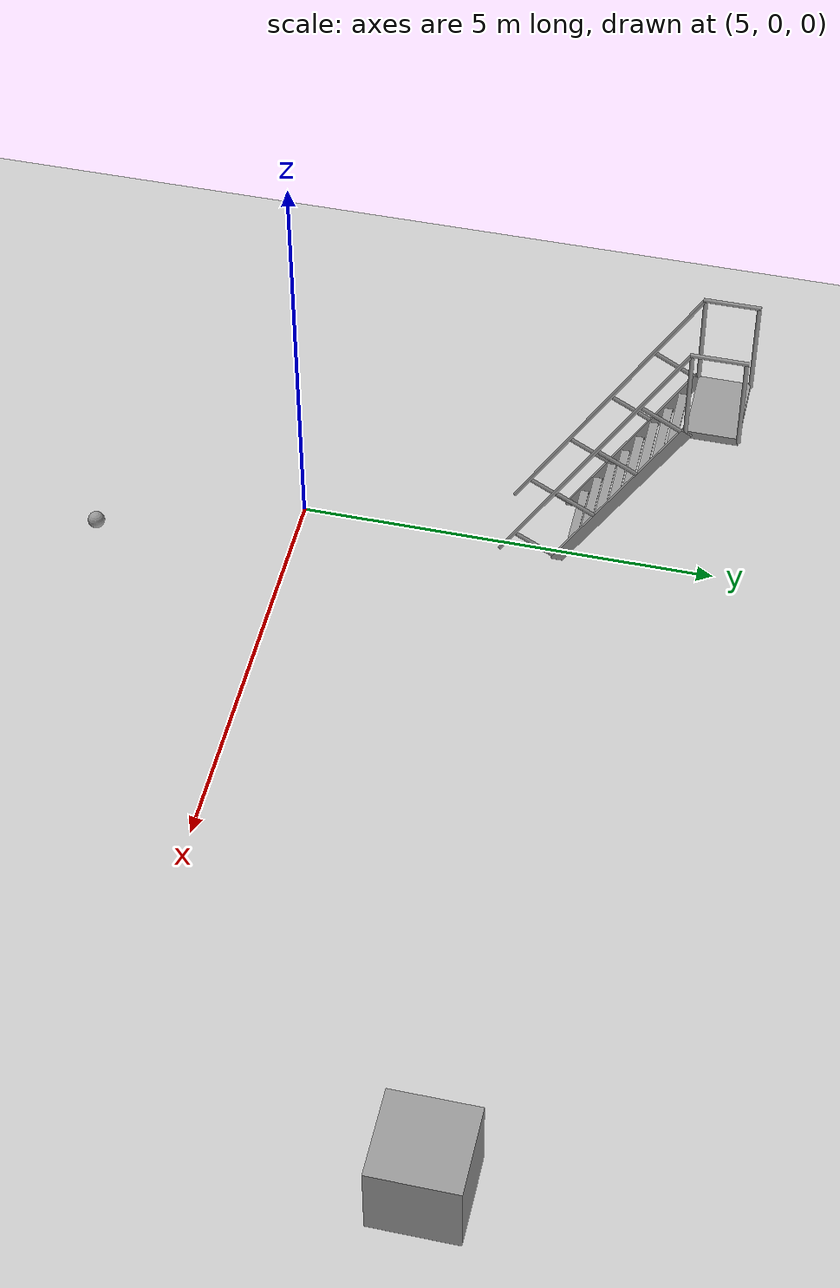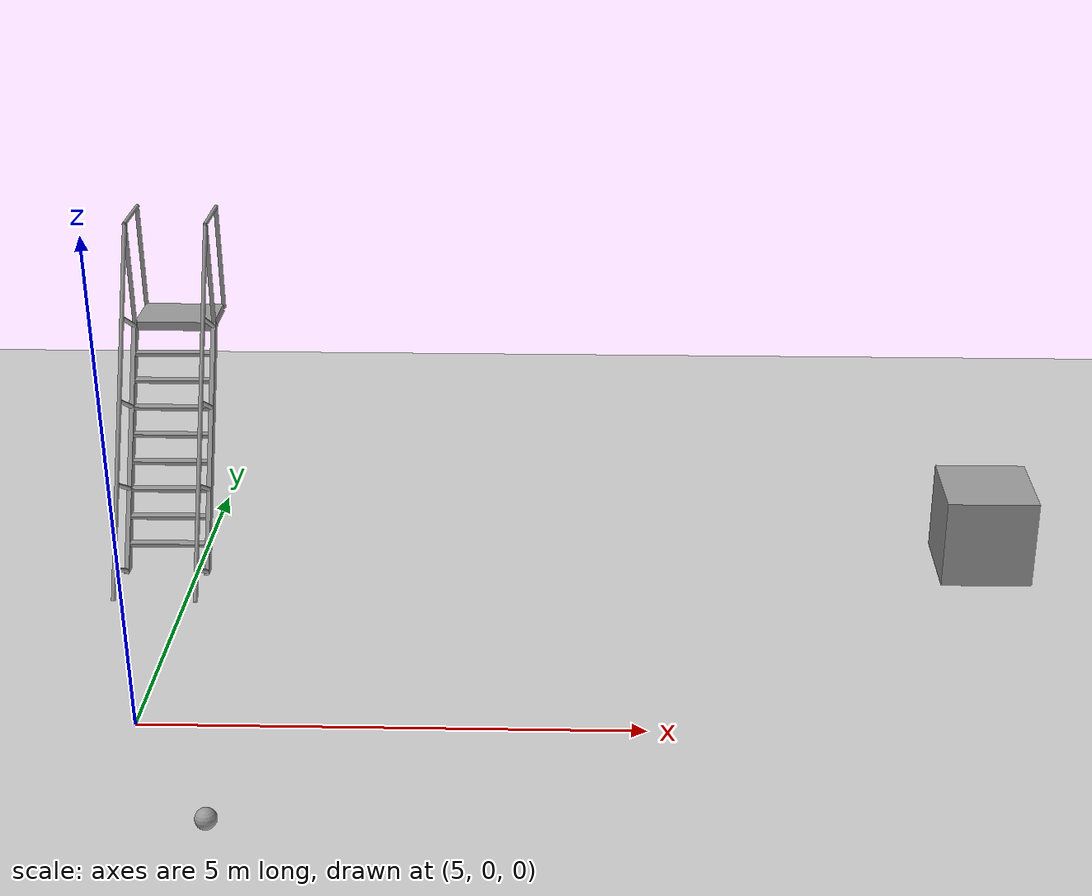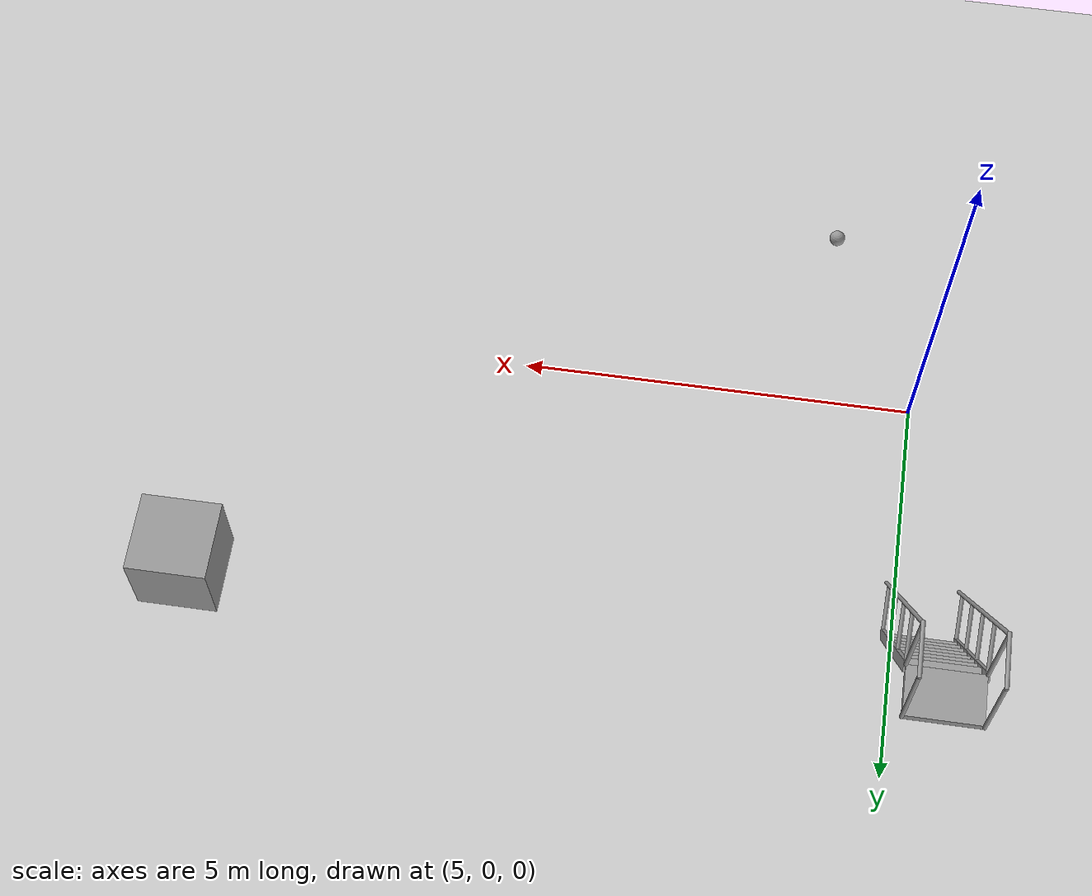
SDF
<sdf version="1.6">
 <world name="default">
  <model name="ground_plane">
   <static>1</static>
   <link name="link">
    <collision name="collision">
     <geometry><plane><normal>0 0 1</normal><size>100 100</size></plane></geometry>
     <surface>
      <contact><collide_bitmask>65535</collide_bitmask></contact>
      <friction><ode><mu>100</mu><mu2>50</mu2></ode></friction>
     </surface>
    </collision>
    <visual name="visual">
     <cast_shadows>0</cast_shadows>
     <geometry><plane><normal>0 0 1</normal><size>100 100</size></plane></geometry>
     <material>
      <script><uri>file://media/materials/scripts/gazebo.material</uri><name>Gazebo/Grey</name></script>
     </material>
    </visual>
   </link>
  </model>
  <model name="ladder_60deg_2rails">
   <static>1</static>
   <link name="step0">
    <pose>0 0.15396 0.266667 0 -0 0</pose>
    <inertial>
     <mass>9.75482</mass>
     <inertia>
      <ixx>0.00957124</ixx>
      <iyy>0.65963</iyy>
      <izz>0.666842</izz>
      <ixy>0</ixy>
      <ixz>0</ixz>
      <iyz>0</iyz>
     </inertia>
    </inertial>
    <collision name="collision"><geometry><box><size>0.9 0.1016 0.0381</size></box></geometry></collision>
    <visual name="visual">
     <geometry><box><size>0.9 0.1016 0.0381</size></box></geometry>
     <material>
      <script><uri>file://media/materials/scripts/gazebo.material</uri><name>Gazebo/Grey</name></script>
     </material>
    </visual>
   </link>
   <link name="step1">
    <pose>0 0.30792 0.533333 0 -0 0</pose>
    <inertial>
     <mass>9.75482</mass>
     <inertia>
      <ixx>0.00957124</ixx>
      <iyy>0.65963</iyy>
      <izz>0.666842</izz>
      <ixy>0</ixy>
      <ixz>0</ixz>
      <iyz>0</iyz>
     </inertia>
    </inertial>
    <collision name="collision"><geometry><box><size>0.9 0.1016 0.0381</size></box></geometry></collision>
    <visual name="visual">
     <geometry><box><size>0.9 0.1016 0.0381</size></box></geometry>
     <material>
      <script><uri>file://media/materials/scripts/gazebo.material</uri><name>Gazebo/Grey</name></script>
     </material>
    </visual>
   </link>
   <link name="step2">
    <pose>0 0.46188 0.8 0 -0 0</pose>
    <inertial>
     <mass>9.75482</mass>
     <inertia>
      <ixx>0.00957124</ixx>
      <iyy>0.65963</iyy>
      <izz>0.666842</izz>
      <ixy>0</ixy>
      <ixz>0</ixz>
      <iyz>0</iyz>
     </inertia>
    </inertial>
    <collision name="collision"><geometry><box><size>0.9 0.1016 0.0381</size></box></geometry></collision>
    <visual name="visual">
     <geometry><box><size>0.9 0.1016 0.0381</size></box></geometry>
     <material>
      <script><uri>file://media/materials/scripts/gazebo.material</uri><name>Gazebo/Grey</name></script>
     </material>
    </visual>
   </link>
   <link name="step3">
    <pose>0 0.61584 1.06667 0 -0 0</pose>
    <inertial>
     <mass>9.75482</mass>
     <inertia>
      <ixx>0.00957124</ixx>
      <iyy>0.65963</iyy>
      <izz>0.666842</izz>
      <ixy>0</ixy>
      <ixz>0</ixz>
      <iyz>0</iyz>
     </inertia>
    </inertial>
    <collision name="collision"><geometry><box><size>0.9 0.1016 0.0381</size></box></geometry></collision>
    <visual name="visual">
     <geometry><box><size>0.9 0.1016 0.0381</size></box></geometry>
     <material>
      <script><uri>file://media/materials/scripts/gazebo.material</uri><name>Gazebo/Grey</name></script>
     </material>
    </visual>
   </link>
   <link name="step4">
    <pose>0 0.7698 1.33333 0 -0 0</pose>
    <inertial>
     <mass>9.75482</mass>
     <inertia>
      <ixx>0.00957124</ixx>
      <iyy>0.65963</iyy>
      <izz>0.666842</izz>
      <ixy>0</ixy>
      <ixz>0</ixz>
      <iyz>0</iyz>
     </inertia>
    </inertial>
    <collision name="collision"><geometry><box><size>0.9 0.1016 0.0381</size></box></geometry></collision>
    <visual name="visual">
     <geometry><box><size>0.9 0.1016 0.0381</size></box></geometry>
     <material>
      <script><uri>file://media/materials/scripts/gazebo.material</uri><name>Gazebo/Grey</name></script>
     </material>
    </visual>
   </link>
   <link name="step5">
    <pose>0 0.92376 1.6 0 -0 0</pose>
    <inertial>
     <mass>9.75482</mass>
     <inertia>
      <ixx>0.00957124</ixx>
      <iyy>0.65963</iyy>
      <izz>0.666842</izz>
      <ixy>0</ixy>
      <ixz>0</ixz>
      <iyz>0</iyz>
     </inertia>
    </inertial>
    <collision name="collision"><geometry><box><size>0.9 0.1016 0.0381</size></box></geometry></collision>
    <visual name="visual">
     <geometry><box><size>0.9 0.1016 0.0381</size></box></geometry>
     <material>
      <script><uri>file://media/materials/scripts/gazebo.material</uri><name>Gazebo/Grey</name></script>
     </material>
    </visual>
   </link>
   <link name="step6">
    <pose>0 1.07772 1.86667 0 -0 0</pose>
    <inertial>
     <mass>9.75482</mass>
     <inertia>
      <ixx>0.00957124</ixx>
      <iyy>0.65963</iyy>
      <izz>0.666842</izz>
      <ixy>0</ixy>
      <ixz>0</ixz>
      <iyz>0</iyz>
     </inertia>
    </inertial>
    <collision name="collision"><geometry><box><size>0.9 0.1016 0.0381</size></box></geometry></collision>
    <visual name="visual">
     <geometry><box><size>0.9 0.1016 0.0381</size></box></geometry>
     <material>
      <script><uri>file://media/materials/scripts/gazebo.material</uri><name>Gazebo/Grey</name></script>
     </material>
    </visual>
   </link>
   <link name="step7">
    <pose>0 1.23168 2.13333 0 -0 0</pose>
    <inertial>
     <mass>9.75482</mass>
     <inertia>
      <ixx>0.00957124</ixx>
      <iyy>0.65963</iyy>
      <izz>0.666842</izz>
      <ixy>0</ixy>
      <ixz>0</ixz>
      <iyz>0</iyz>
     </inertia>
    </inertial>
    <collision name="collision"><geometry><box><size>0.9 0.1016 0.0381</size></box></geometry></collision>
    <visual name="visual">
     <geometry><box><size>0.9 0.1016 0.0381</size></box></geometry>
     <material>
      <script><uri>file://media/materials/scripts/gazebo.material</uri><name>Gazebo/Grey</name></script>
     </material>
    </visual>
   </link>
   <link name="landing">
    <pose>0 1.68564 2.4 0 -0 0</pose>
    <inertial>
     <mass>57.6072</mass>
     <inertia><ixx>1.73518</ixx><iyy>3.89545</iyy><izz>5.6167</izz><ixy>0</ixy><ixz>0</ixz><iyz>0</iyz></inertia>
    </inertial>
    <collision name="collision"><geometry><box><size>0.9 0.6 0.1016</size></box></geometry></collision>
    <visual name="visual">
     <geometry><box><size>0.9 0.6 0.1016</size></box></geometry>
     <material>
      <script><uri>file://media/materials/scripts/gazebo.material</uri><name>Gazebo/Grey</name></script>
     </material>
    </visual>
   </link>
   <link name="left_side_wall">
    <pose>-0.45 0.69282 1.2 1.0472 -0 0</pose>
    <collision name="collision"><geometry><box><size>0.0508 2.85128 0.13</size></box></geometry></collision>
    <visual name="visual">
     <geometry><box><size>0.0508 2.85128 0.13</size></box></geometry>
     <material>
      <script><uri>file://media/materials/scripts/gazebo.material</uri><name>Gazebo/Grey</name></script>
     </material>
    </visual>
   </link>
   <link name="right_side_wall">
    <pose>0.45 0.69282 1.2 1.0472 -0 0</pose>
    <collision name="collision"><geometry><box><size>0.0508 2.85128 0.13</size></box></geometry></collision>
    <visual name="visual">
     <geometry><box><size>0.0508 2.85128 0.13</size></box></geometry>
     <material>
      <script><uri>file://media/materials/scripts/gazebo.material</uri><name>Gazebo/Grey</name></script>
     </material>
    </visual>
   </link>
   <link name="left_railing_long">
    <pose>-0.45 0.34282 1.80622 -0.523599 0 0</pose>
    <collision name="collision">
     <geometry><cylinder><radius>0.02413</radius><length>4.17128</length></cylinder></geometry>
    </collision>
    <visual name="visual">
     <geometry><cylinder><radius>0.02413</radius><length>4.17128</length></cylinder></geometry>
     <material>
      <script><uri>file://media/materials/scripts/gazebo.material</uri><name>Gazebo/Grey</name></script>
     </material>
    </visual>
   </link>
   <link name="left_railing_upright0">
    <pose>-0.45 -0.274963 0.15875 1.0472 -0 0</pose>
    <collision name="collision">
     <geometry><cylinder><radius>0.02413</radius><length>0.541218</length></cylinder></geometry>
    </collision>
    <visual name="visual">
     <geometry><cylinder><radius>0.02413</radius><length>0.541218</length></cylinder></geometry>
     <material>
      <script><uri>file://media/materials/scripts/gazebo.material</uri><name>Gazebo/Grey</name></script>
     </material>
    </visual>
   </link>
   <link name="left_railing_upright1">
    <pose>-0.45 0.186917 0.95875 1.0472 -0 0</pose>
    <collision name="collision">
     <geometry><cylinder><radius>0.02413</radius><length>0.541218</length></cylinder></geometry>
    </collision>
    <visual name="visual">
     <geometry><cylinder><radius>0.02413</radius><length>0.541218</length></cylinder></geometry>
     <material>
      <script><uri>file://media/materials/scripts/gazebo.material</uri><name>Gazebo/Grey</name></script>
     </material>
    </visual>
   </link>
   <link name="left_railing_upright2">
    <pose>-0.45 0.648797 1.75875 1.0472 -0 0</pose>
    <collision name="collision">
     <geometry><cylinder><radius>0.02413</radius><length>0.541218</length></cylinder></geometry>
    </collision>
    <visual name="visual">
     <geometry><cylinder><radius>0.02413</radius><length>0.541218</length></cylinder></geometry>
     <material>
      <script><uri>file://media/materials/scripts/gazebo.material</uri><name>Gazebo/Grey</name></script>
     </material>
    </visual>
   </link>
   <link name="left_railing_upright3">
    <pose>-0.45 1.11068 2.55875 1.0472 -0 0</pose>
    <collision name="collision">
     <geometry><cylinder><radius>0.02413</radius><length>0.541218</length></cylinder></geometry>
    </collision>
    <visual name="visual">
     <geometry><cylinder><radius>0.02413</radius><length>0.541218</length></cylinder></geometry>
     <material>
      <script><uri>file://media/materials/scripts/gazebo.material</uri><name>Gazebo/Grey</name></script>
     </material>
    </visual>
   </link>
   <link name="left_railing_landing_top">
    <pose>-0.45 1.68564 3.61244 1.5708 -0 0</pose>
    <collision name="collision">
     <geometry><cylinder><radius>0.02413</radius><length>0.64826</length></cylinder></geometry>
    </collision>
    <visual name="visual">
     <geometry><cylinder><radius>0.02413</radius><length>0.64826</length></cylinder></geometry>
     <material>
      <script><uri>file://media/materials/scripts/gazebo.material</uri><name>Gazebo/Grey</name></script>
     </material>
    </visual>
   </link>
   <link name="left_railing_landing_upright_0">
    <pose>-0.45 1.38564 3.00622 0 -0 0</pose>
    <collision name="collision">
     <geometry><cylinder><radius>0.02413</radius><length>1.21244</length></cylinder></geometry>
    </collision>
    <visual name="visual">
     <geometry><cylinder><radius>0.02413</radius><length>1.21244</length></cylinder></geometry>
     <material>
      <script><uri>file://media/materials/scripts/gazebo.material</uri><name>Gazebo/Grey</name></script>
     </material>
    </visual>
   </link>
   <link name="left_railing_landing_upright_1">
    <pose>-0.45 1.98564 3.00622 0 -0 0</pose>
    <collision name="collision">
     <geometry><cylinder><radius>0.02413</radius><length>1.21244</length></cylinder></geometry>
    </collision>
    <visual name="visual">
     <geometry><cylinder><radius>0.02413</radius><length>1.21244</length></cylinder></geometry>
     <material>
      <script><uri>file://media/materials/scripts/gazebo.material</uri><name>Gazebo/Grey</name></script>
     </material>
    </visual>
   </link>
   <link name="right_railing_long">
    <pose>0.45 0.34282 1.80622 -0.523599 0 0</pose>
    <collision name="collision">
     <geometry><cylinder><radius>0.02413</radius><length>4.17128</length></cylinder></geometry>
    </collision>
    <visual name="visual">
     <geometry><cylinder><radius>0.02413</radius><length>4.17128</length></cylinder></geometry>
     <material>
      <script><uri>file://media/materials/scripts/gazebo.material</uri><name>Gazebo/Grey</name></script>
     </material>
    </visual>
   </link>
   <link name="right_railing_upright0">
    <pose>0.45 -0.274963 0.15875 1.0472 -0 0</pose>
    <collision name="collision">
     <geometry><cylinder><radius>0.02413</radius><length>0.541218</length></cylinder></geometry>
    </collision>
    <visual name="visual">
     <geometry><cylinder><radius>0.02413</radius><length>0.541218</length></cylinder></geometry>
     <material>
      <script><uri>file://media/materials/scripts/gazebo.material</uri><name>Gazebo/Grey</name></script>
     </material>
    </visual>
   </link>
   <link name="right_railing_upright1">
    <pose>0.45 0.186917 0.95875 1.0472 -0 0</pose>
    <collision name="collision">
     <geometry><cylinder><radius>0.02413</radius><length>0.541218</length></cylinder></geometry>
    </collision>
    <visual name="visual">
     <geometry><cylinder><radius>0.02413</radius><length>0.541218</length></cylinder></geometry>
     <material>
      <script><uri>file://media/materials/scripts/gazebo.material</uri><name>Gazebo/Grey</name></script>
     </material>
    </visual>
   </link>
   <link name="right_railing_upright2">
    <pose>0.45 0.648797 1.75875 1.0472 -0 0</pose>
    <collision name="collision">
     <geometry><cylinder><radius>0.02413</radius><length>0.541218</length></cylinder></geometry>
    </collision>
    <visual name="visual">
     <geometry><cylinder><radius>0.02413</radius><length>0.541218</length></cylinder></geometry>
     <material>
      <script><uri>file://media/materials/scripts/gazebo.material</uri><name>Gazebo/Grey</name></script>
     </material>
    </visual>
   </link>
   <link name="right_railing_upright3">
    <pose>0.45 1.11068 2.55875 1.0472 -0 0</pose>
    <collision name="collision">
     <geometry><cylinder><radius>0.02413</radius><length>0.541218</length></cylinder></geometry>
    </collision>
    <visual name="visual">
     <geometry><cylinder><radius>0.02413</radius><length>0.541218</length></cylinder></geometry>
     <material>
      <script><uri>file://media/materials/scripts/gazebo.material</uri><name>Gazebo/Grey</name></script>
     </material>
    </visual>
   </link>
   <link name="right_railing_landing_top">
    <pose>0.45 1.68564 3.61244 1.5708 -0 0</pose>
    <collision name="collision">
     <geometry><cylinder><radius>0.02413</radius><length>0.64826</length></cylinder></geometry>
    </collision>
    <visual name="visual">
     <geometry><cylinder><radius>0.02413</radius><length>0.64826</length></cylinder></geometry>
     <material>
      <script><uri>file://media/materials/scripts/gazebo.material</uri><name>Gazebo/Grey</name></script>
     </material>
    </visual>
   </link>
   <link name="right_railing_landing_upright_0">
    <pose>0.45 1.38564 3.00622 0 -0 0</pose>
    <collision name="collision">
     <geometry><cylinder><radius>0.02413</radius><length>1.21244</length></cylinder></geometry>
    </collision>
    <visual name="visual">
     <geometry><cylinder><radius>0.02413</radius><length>1.21244</length></cylinder></geometry>
     <material>
      <script><uri>file://media/materials/scripts/gazebo.material</uri><name>Gazebo/Grey</name></script>
     </material>
    </visual>
   </link>
   <link name="right_railing_landing_upright_1">
    <pose>0.45 1.98564 3.00622 0 -0 0</pose>
    <collision name="collision">
     <geometry><cylinder><radius>0.02413</radius><length>1.21244</length></cylinder></geometry>
    </collision>
    <visual name="visual">
     <geometry><cylinder><radius>0.02413</radius><length>1.21244</length></cylinder></geometry>
     <material>
      <script><uri>file://media/materials/scripts/gazebo.material</uri><name>Gazebo/Grey</name></script>
     </material>
    </visual>
   </link>
   <pose>4.6499 3.13895 0 0 -0 0</pose>
  </model>
  <model name="unit_box">
   <pose>13.783 3.5118 0.499995 0 1e-05 0</pose>
   <link name="link">
    <inertial>
     <mass>1</mass>
     <inertia>
      <ixx>0.166667</ixx>
      <ixy>0</ixy>
      <ixz>0</ixz>
      <iyy>0.166667</iyy>
      <iyz>0</iyz>
      <izz>0.166667</izz>
     </inertia>
    </inertial>
    <collision name="collision"><geometry><box><size>1 1 1</size></box></geometry></collision>
    <visual name="visual">
     <geometry><box><size>1 1 1</size></box></geometry>
     <material>
      <script><name>Gazebo/Grey</name><uri>file://media/materials/scripts/gazebo.material</uri></script>
     </material>
    </visual>
   </link>
  </model>
  <model name="my_ball">
   <link name="link_0">
    <inertial>
     <mass>1</mass>
     <inertia><ixx>0.1</ixx><ixy>0</ixy><ixz>0</ixz><iyy>0.1</iyy><iyz>0</iyz><izz>0.1</izz></inertia>
    </inertial>
    <visual name="visual">
     <geometry><sphere><radius>0.1</radius></sphere></geometry>
     <material>
      <lighting>1</lighting>
      <script><uri>file://media/materials/scripts/gazebo.material</uri><name>Gazebo/Grey</name></script>
      <shader type="pixel"><normal_map>__default__</normal_map></shader>
      <ambient>1 1 1 1</ambient>
      <diffuse>1 1 1 1</diffuse>
      <specular>1 1 1 1</specular>
      <emissive>1 1 1 1</emissive>
     </material>
    </visual>
    <collision name="collision">
     <geometry><sphere><radius>0.1</radius></sphere></geometry>
     <surface>
      <friction>
       <ode><mu>1</mu><mu2>1</mu2><fdir1>0 0 0</fdir1><slip1>0</slip1><slip2>0</slip2></ode>
       <torsional>
        <coefficient>1</coefficient>
        <patch_radius>0</patch_radius>
        <surface_radius>0</surface_radius>
        <use_patch_radius>1</use_patch_radius>
        <ode><slip>0</slip></ode>
       </torsional>
      </friction>
      <bounce><restitution_coefficient>0</restitution_coefficient><threshold>1e+06</threshold></bounce>
      <contact>
       <collide_without_contact>0</collide_without_contact>
       <collide_without_contact_bitmask>1</collide_without_contact_bitmask>
       <collide_bitmask>1</collide_bitmask>
       <ode>
        <soft_cfm>0</soft_cfm>
        <soft_erp>0.2</soft_erp>
        <kp>1e+13</kp>
        <kd>1</kd>
        <max_vel>0.01</max_vel>
        <min_depth>0</min_depth>
       </ode>
       <bullet>
        <split_impulse>1</split_impulse>
        <split_impulse_penetration_threshold>-0.01</split_impulse_penetration_threshold>
        <soft_cfm>0</soft_cfm>
        <soft_erp>0.2</soft_erp>
        <kp>1e+13</kp>
        <kd>1</kd>
       </bullet>
      </contact>
     </surface>
    </collision>
   </link>
   <static>0</static>
   <pose>6.16542 -2.22704 0.5 0 -0 0</pose>
  </model>
 </world>
</sdf>
